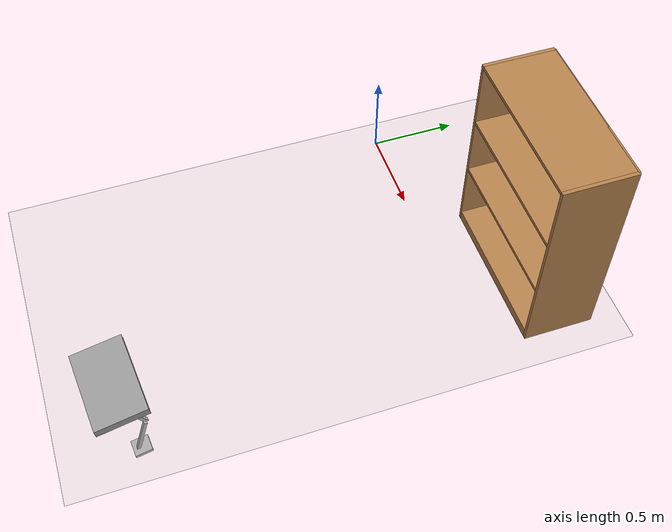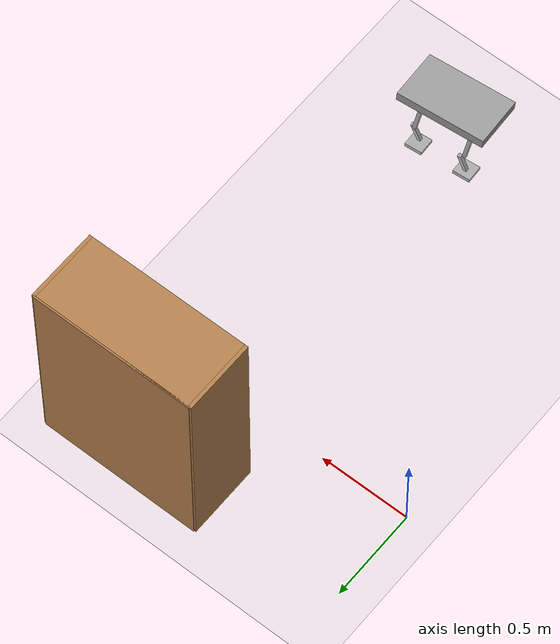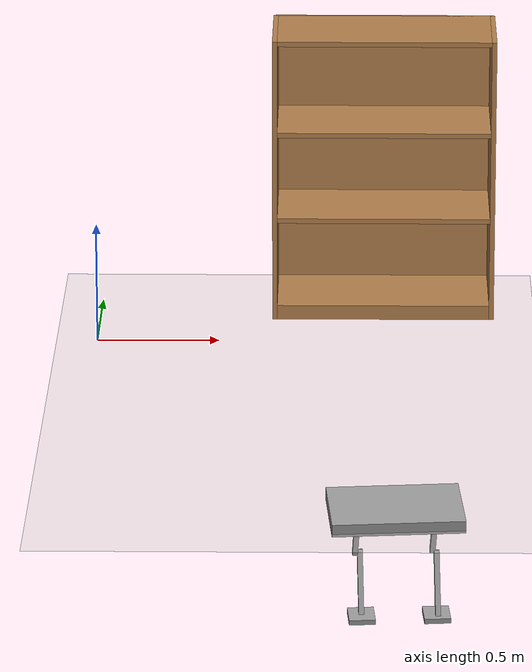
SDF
<sdf version="1.7">
 <world name="default">
  <model name="ground_plane">
   <static>1</static>
   <link name="link">
    <collision name="collision">
     <geometry><plane><normal>0 0 1</normal><size>100 100</size></plane></geometry>
     <surface>
      <contact><collide_bitmask>65535</collide_bitmask></contact>
      <friction><ode><mu>100</mu><mu2>50</mu2></ode></friction>
     </surface>
    </collision>
    <visual name="visual">
     <cast_shadows>0</cast_shadows>
     <geometry><plane><normal>0 0 1</normal><size>100 100</size></plane></geometry>
     <material>
      <script><uri>file://media/materials/scripts/gazebo.material</uri><name>Gazebo/Grey</name></script>
     </material>
    </visual>
   </link>
  </model>
  <model name="bookshelf_0">
   <static>1</static>
   <link name="link">
    <inertial><mass>1</mass></inertial>
    <collision name="back">
     <pose>0 0.005 0.6 0 -0 0</pose>
     <geometry><box><size>0.9 0.01 1.2</size></box></geometry>
    </collision>
    <visual name="visual1">
     <pose>0 0.005 0.6 0 -0 0</pose>
     <geometry><box><size>0.9 0.01 1.2</size></box></geometry>
     <material>
      <script><uri>file://media/materials/scripts/gazebo.material</uri><name>Gazebo/Wood</name></script>
     </material>
    </visual>
    <collision name="left_side">
     <pose>0.45 -0.195 0.6 0 -0 0</pose>
     <geometry><box><size>0.02 0.4 1.2</size></box></geometry>
    </collision>
    <visual name="visual2">
     <pose>0.45 -0.195 0.6 0 -0 0</pose>
     <geometry><box><size>0.02 0.4 1.2</size></box></geometry>
     <material>
      <script><uri>file://media/materials/scripts/gazebo.material</uri><name>Gazebo/Wood</name></script>
     </material>
    </visual>
    <collision name="right_side">
     <pose>-0.45 -0.195 0.6 0 -0 0</pose>
     <geometry><box><size>0.02 0.4 1.2</size></box></geometry>
    </collision>
    <visual name="visual3">
     <pose>-0.45 -0.195 0.6 0 -0 0</pose>
     <geometry><box><size>0.02 0.4 1.2</size></box></geometry>
     <material>
      <script><uri>file://media/materials/scripts/gazebo.material</uri><name>Gazebo/Wood</name></script>
     </material>
    </visual>
    <collision name="bottom">
     <pose>0 -0.195 0.03 0 -0 0</pose>
     <geometry><box><size>0.88 0.4 0.06</size></box></geometry>
    </collision>
    <visual name="visual4">
     <pose>0 -0.195 0.03 0 -0 0</pose>
     <geometry><box><size>0.88 0.4 0.06</size></box></geometry>
     <material>
      <script><uri>file://media/materials/scripts/gazebo.material</uri><name>Gazebo/Wood</name></script>
     </material>
    </visual>
    <collision name="top">
     <pose>0 -0.195 1.19 0 -0 0</pose>
     <geometry><box><size>0.88 0.4 0.02</size></box></geometry>
    </collision>
    <visual name="visual5">
     <pose>0 -0.195 1.19 0 -0 0</pose>
     <geometry><box><size>0.88 0.4 0.02</size></box></geometry>
     <material>
      <script><uri>file://media/materials/scripts/gazebo.material</uri><name>Gazebo/Wood</name></script>
     </material>
    </visual>
    <collision name="low_shelf">
     <pose>0 -0.195 0.43 0 -0 0</pose>
     <geometry><box><size>0.88 0.4 0.02</size></box></geometry>
    </collision>
    <visual name="visual6">
     <pose>0 -0.195 0.43 0 -0 0</pose>
     <geometry><box><size>0.88 0.4 0.02</size></box></geometry>
     <material>
      <script><uri>file://media/materials/scripts/gazebo.material</uri><name>Gazebo/Wood</name></script>
     </material>
    </visual>
    <collision name="high_shelf">
     <pose>0 -0.195 0.8 0 -0 0</pose>
     <geometry><box><size>0.88 0.4 0.02</size></box></geometry>
    </collision>
    <visual name="visual7">
     <pose>0 -0.195 0.8 0 -0 0</pose>
     <geometry><box><size>0.88 0.4 0.02</size></box></geometry>
     <material>
      <script><uri>file://media/materials/scripts/gazebo.material</uri><name>Gazebo/Wood</name></script>
     </material>
    </visual>
   </link>
   <pose>1.1746 0.663982 0 0 -0 0</pose>
  </model>
  <model name="humanoidRobot_0_clone_clone">
   <link name="link_0">
    <inertial>
     <mass>1</mass>
     <inertia>
      <ixx>0.166667</ixx>
      <ixy>0</ixy>
      <ixz>0</ixz>
      <iyy>0.166667</iyy>
      <iyz>0</iyz>
      <izz>0.166667</izz>
     </inertia>
    </inertial>
    <pose>-0.013681 -0.03226 0.204424 0 -0 0</pose>
    <visual name="visual">
     <geometry><box><size>0.5 0.3 0.05</size></box></geometry>
     <material>
      <lighting>1</lighting>
      <script><uri>file://media/materials/scripts/gazebo.material</uri><name>Gazebo/Grey</name></script>
      <shader type="pixel"><normal_map>__default__</normal_map></shader>
      <ambient>0.3 0.3 0.3 1</ambient>
      <diffuse>0.7 0.7 0.7 1</diffuse>
      <specular>0.01 0.01 0.01 1</specular>
      <emissive>0 0 0 1</emissive>
     </material>
    </visual>
    <collision name="collision">
     <geometry><box><size>0.5 0.3 0.02</size></box></geometry>
     <surface>
      <friction>
       <ode><mu>1</mu><mu2>1</mu2><fdir1>0 0 0</fdir1><slip1>0</slip1><slip2>0</slip2></ode>
       <torsional>
        <coefficient>1</coefficient>
        <patch_radius>0</patch_radius>
        <surface_radius>0</surface_radius>
        <use_patch_radius>1</use_patch_radius>
        <ode><slip>0</slip></ode>
       </torsional>
      </friction>
      <bounce><restitution_coefficient>0</restitution_coefficient><threshold>1e+06</threshold></bounce>
      <contact>
       <collide_without_contact>0</collide_without_contact>
       <collide_without_contact_bitmask>1</collide_without_contact_bitmask>
       <collide_bitmask>1</collide_bitmask>
       <ode>
        <soft_cfm>0</soft_cfm>
        <soft_erp>0.2</soft_erp>
        <kp>1e+13</kp>
        <kd>1</kd>
        <max_vel>0.01</max_vel>
        <min_depth>0</min_depth>
       </ode>
       <bullet>
        <split_impulse>1</split_impulse>
        <split_impulse_penetration_threshold>-0.01</split_impulse_penetration_threshold>
        <soft_cfm>0</soft_cfm>
        <soft_erp>0.2</soft_erp>
        <kp>1e+13</kp>
        <kd>1</kd>
       </bullet>
      </contact>
     </surface>
    </collision>
   </link>
   <link name="link_1">
    <inertial>
     <mass>1</mass>
     <inertia>
      <ixx>0.166667</ixx>
      <ixy>0</ixy>
      <ixz>0</ixz>
      <iyy>0.166667</iyy>
      <iyz>0</iyz>
      <izz>0.166667</izz>
     </inertia>
    </inertial>
    <pose>0.138675 -0.024286 0.185616 0.399501 -0 0</pose>
    <visual name="visual">
     <pose>0 0 -0.11 0 -0 0</pose>
     <geometry><box><size>0.02 0.02 0.25</size></box></geometry>
     <material>
      <lighting>1</lighting>
      <script><uri>file://media/materials/scripts/gazebo.material</uri><name>Gazebo/Grey</name></script>
      <shader type="pixel"><normal_map>__default__</normal_map></shader>
      <ambient>0.3 0.3 0.3 1</ambient>
      <diffuse>0.7 0.7 0.7 1</diffuse>
      <specular>0.01 0.01 0.01 1</specular>
      <emissive>0 0 0 1</emissive>
     </material>
    </visual>
    <collision name="collision">
     <pose>0 0 -0.11 0 -0 0</pose>
     <geometry><box><size>0.02 0.02 0.25</size></box></geometry>
     <surface>
      <friction>
       <ode><mu>1</mu><mu2>1</mu2><fdir1>0 0 0</fdir1><slip1>0</slip1><slip2>0</slip2></ode>
       <torsional>
        <coefficient>1</coefficient>
        <patch_radius>0</patch_radius>
        <surface_radius>0</surface_radius>
        <use_patch_radius>1</use_patch_radius>
        <ode><slip>0</slip></ode>
       </torsional>
      </friction>
      <bounce><restitution_coefficient>0</restitution_coefficient><threshold>1e+06</threshold></bounce>
      <contact>
       <collide_without_contact>0</collide_without_contact>
       <collide_without_contact_bitmask>1</collide_without_contact_bitmask>
       <collide_bitmask>1</collide_bitmask>
       <ode>
        <soft_cfm>0</soft_cfm>
        <soft_erp>0.2</soft_erp>
        <kp>1e+13</kp>
        <kd>1</kd>
        <max_vel>0.01</max_vel>
        <min_depth>0</min_depth>
       </ode>
       <bullet>
        <split_impulse>1</split_impulse>
        <split_impulse_penetration_threshold>-0.01</split_impulse_penetration_threshold>
        <soft_cfm>0</soft_cfm>
        <soft_erp>0.2</soft_erp>
        <kp>1e+13</kp>
        <kd>1</kd>
       </bullet>
      </contact>
     </surface>
    </collision>
   </link>
   <link name="link_1_clone">
    <inertial>
     <mass>1</mass>
     <inertia>
      <ixx>0.166667</ixx>
      <ixy>0</ixy>
      <ixz>0</ixz>
      <iyy>0.166667</iyy>
      <iyz>0</iyz>
      <izz>0.166667</izz>
     </inertia>
    </inertial>
    <pose>0.153036 0.05166 -0.034143 -0.417344 0 0</pose>
    <visual name="visual">
     <pose>0 0 -0.11 0 -0 0</pose>
     <geometry><box><size>0.02 0.02 0.25</size></box></geometry>
     <material>
      <lighting>1</lighting>
      <script><uri>file://media/materials/scripts/gazebo.material</uri><name>Gazebo/Grey</name></script>
      <shader type="pixel"><normal_map>__default__</normal_map></shader>
      <ambient>0.3 0.3 0.3 1</ambient>
      <diffuse>0.7 0.7 0.7 1</diffuse>
      <specular>0.01 0.01 0.01 1</specular>
      <emissive>0 0 0 1</emissive>
     </material>
    </visual>
    <collision name="collision">
     <pose>0 0 -0.11 0 -0 0</pose>
     <geometry><box><size>0.02 0.02 0.25</size></box></geometry>
     <surface>
      <friction>
       <ode><mu>1</mu><mu2>1</mu2><fdir1>0 0 0</fdir1><slip1>0</slip1><slip2>0</slip2></ode>
       <torsional>
        <coefficient>1</coefficient>
        <patch_radius>0</patch_radius>
        <surface_radius>0</surface_radius>
        <use_patch_radius>1</use_patch_radius>
        <ode><slip>0</slip></ode>
       </torsional>
      </friction>
      <bounce><restitution_coefficient>0</restitution_coefficient><threshold>1e+06</threshold></bounce>
      <contact>
       <collide_without_contact>0</collide_without_contact>
       <collide_without_contact_bitmask>1</collide_without_contact_bitmask>
       <collide_bitmask>1</collide_bitmask>
       <ode>
        <soft_cfm>0</soft_cfm>
        <soft_erp>0.2</soft_erp>
        <kp>1e+13</kp>
        <kd>1</kd>
        <max_vel>0.01</max_vel>
        <min_depth>0</min_depth>
       </ode>
       <bullet>
        <split_impulse>1</split_impulse>
        <split_impulse_penetration_threshold>-0.01</split_impulse_penetration_threshold>
        <soft_cfm>0</soft_cfm>
        <soft_erp>0.2</soft_erp>
        <kp>1e+13</kp>
        <kd>1</kd>
       </bullet>
      </contact>
     </surface>
    </collision>
   </link>
   <link name="link_1_clone_0">
    <inertial>
     <mass>1</mass>
     <inertia>
      <ixx>0.166667</ixx>
      <ixy>0</ixy>
      <ixz>0</ixz>
      <iyy>0.166667</iyy>
      <iyz>0</iyz>
      <izz>0.166667</izz>
     </inertia>
    </inertial>
    <pose>-0.154988 -0.02403 0.185616 0.399501 -0 0</pose>
    <visual name="visual">
     <pose>0 0 -0.11 0 -0 0</pose>
     <geometry><box><size>0.02 0.02 0.25</size></box></geometry>
     <material>
      <lighting>1</lighting>
      <script><uri>file://media/materials/scripts/gazebo.material</uri><name>Gazebo/Grey</name></script>
      <shader type="pixel"><normal_map>__default__</normal_map></shader>
      <ambient>0.3 0.3 0.3 1</ambient>
      <diffuse>0.7 0.7 0.7 1</diffuse>
      <specular>0.01 0.01 0.01 1</specular>
      <emissive>0 0 0 1</emissive>
     </material>
    </visual>
    <collision name="collision">
     <pose>0 0 -0.11 0 -0 0</pose>
     <geometry><box><size>0.02 0.02 0.25</size></box></geometry>
     <surface>
      <friction>
       <ode><mu>1</mu><mu2>1</mu2><fdir1>0 0 0</fdir1><slip1>0</slip1><slip2>0</slip2></ode>
       <torsional>
        <coefficient>1</coefficient>
        <patch_radius>0</patch_radius>
        <surface_radius>0</surface_radius>
        <use_patch_radius>1</use_patch_radius>
        <ode><slip>0</slip></ode>
       </torsional>
      </friction>
      <bounce><restitution_coefficient>0</restitution_coefficient><threshold>1e+06</threshold></bounce>
      <contact>
       <collide_without_contact>0</collide_without_contact>
       <collide_without_contact_bitmask>1</collide_without_contact_bitmask>
       <collide_bitmask>1</collide_bitmask>
       <ode>
        <soft_cfm>0</soft_cfm>
        <soft_erp>0.2</soft_erp>
        <kp>1e+13</kp>
        <kd>1</kd>
        <max_vel>0.01</max_vel>
        <min_depth>0</min_depth>
       </ode>
       <bullet>
        <split_impulse>1</split_impulse>
        <split_impulse_penetration_threshold>-0.01</split_impulse_penetration_threshold>
        <soft_cfm>0</soft_cfm>
        <soft_erp>0.2</soft_erp>
        <kp>1e+13</kp>
        <kd>1</kd>
       </bullet>
      </contact>
     </surface>
    </collision>
   </link>
   <link name="link_1_clone_clone">
    <inertial>
     <mass>1</mass>
     <inertia>
      <ixx>0.166667</ixx>
      <ixy>0</ixy>
      <ixz>0</ixz>
      <iyy>0.166667</iyy>
      <iyz>0</iyz>
      <izz>0.166667</izz>
     </inertia>
    </inertial>
    <pose>-0.136141 0.07538 -0.034143 -0.417344 0 0</pose>
    <visual name="visual">
     <pose>0 0 -0.11 0 -0 0</pose>
     <geometry><box><size>0.02 0.02 0.25</size></box></geometry>
     <material>
      <lighting>1</lighting>
      <script><uri>file://media/materials/scripts/gazebo.material</uri><name>Gazebo/Grey</name></script>
      <shader type="pixel"><normal_map>__default__</normal_map></shader>
      <ambient>0.3 0.3 0.3 1</ambient>
      <diffuse>0.7 0.7 0.7 1</diffuse>
      <specular>0.01 0.01 0.01 1</specular>
      <emissive>0 0 0 1</emissive>
     </material>
    </visual>
    <collision name="collision">
     <pose>0 0 -0.11 0 -0 0</pose>
     <geometry><box><size>0.02 0.02 0.25</size></box></geometry>
     <surface>
      <friction>
       <ode><mu>1</mu><mu2>1</mu2><fdir1>0 0 0</fdir1><slip1>0</slip1><slip2>0</slip2></ode>
       <torsional>
        <coefficient>1</coefficient>
        <patch_radius>0</patch_radius>
        <surface_radius>0</surface_radius>
        <use_patch_radius>1</use_patch_radius>
        <ode><slip>0</slip></ode>
       </torsional>
      </friction>
      <bounce><restitution_coefficient>0</restitution_coefficient><threshold>1e+06</threshold></bounce>
      <contact>
       <collide_without_contact>0</collide_without_contact>
       <collide_without_contact_bitmask>1</collide_without_contact_bitmask>
       <collide_bitmask>1</collide_bitmask>
       <ode>
        <soft_cfm>0</soft_cfm>
        <soft_erp>0.2</soft_erp>
        <kp>1e+13</kp>
        <kd>1</kd>
        <max_vel>0.01</max_vel>
        <min_depth>0</min_depth>
       </ode>
       <bullet>
        <split_impulse>1</split_impulse>
        <split_impulse_penetration_threshold>-0.01</split_impulse_penetration_threshold>
        <soft_cfm>0</soft_cfm>
        <soft_erp>0.2</soft_erp>
        <kp>1e+13</kp>
        <kd>1</kd>
       </bullet>
      </contact>
     </surface>
    </collision>
   </link>
   <link name="link_2">
    <inertial>
     <mass>1</mass>
     <inertia>
      <ixx>0.166667</ixx>
      <ixy>0</ixy>
      <ixz>0</ixz>
      <iyy>0.166667</iyy>
      <iyz>0</iyz>
      <izz>0.166667</izz>
     </inertia>
    </inertial>
    <pose>0.149239 -0.024175 -0.255408 0 -0 0</pose>
    <visual name="visual">
     <geometry><box><size>0.1 0.1 0.02</size></box></geometry>
     <material>
      <lighting>1</lighting>
      <script><uri>file://media/materials/scripts/gazebo.material</uri><name>Gazebo/Grey</name></script>
      <shader type="pixel"><normal_map>__default__</normal_map></shader>
      <ambient>0.3 0.3 0.3 1</ambient>
      <diffuse>0.7 0.7 0.7 1</diffuse>
      <specular>0.01 0.01 0.01 1</specular>
      <emissive>0 0 0 1</emissive>
     </material>
    </visual>
    <collision name="collision">
     <geometry><box><size>0.1 0.1 0.02</size></box></geometry>
     <surface>
      <friction>
       <ode><mu>1</mu><mu2>1</mu2><fdir1>0 0 0</fdir1><slip1>0</slip1><slip2>0</slip2></ode>
       <torsional>
        <coefficient>1</coefficient>
        <patch_radius>0</patch_radius>
        <surface_radius>0</surface_radius>
        <use_patch_radius>1</use_patch_radius>
        <ode><slip>0</slip></ode>
       </torsional>
      </friction>
      <bounce><restitution_coefficient>0</restitution_coefficient><threshold>1e+06</threshold></bounce>
      <contact>
       <collide_without_contact>0</collide_without_contact>
       <collide_without_contact_bitmask>1</collide_without_contact_bitmask>
       <collide_bitmask>1</collide_bitmask>
       <ode>
        <soft_cfm>0</soft_cfm>
        <soft_erp>0.2</soft_erp>
        <kp>1e+13</kp>
        <kd>1</kd>
        <max_vel>0.01</max_vel>
        <min_depth>0</min_depth>
       </ode>
       <bullet>
        <split_impulse>1</split_impulse>
        <split_impulse_penetration_threshold>-0.01</split_impulse_penetration_threshold>
        <soft_cfm>0</soft_cfm>
        <soft_erp>0.2</soft_erp>
        <kp>1e+13</kp>
        <kd>1</kd>
       </bullet>
      </contact>
     </surface>
    </collision>
   </link>
   <link name="link_2_clone">
    <inertial>
     <mass>1</mass>
     <inertia>
      <ixx>0.166667</ixx>
      <ixy>0</ixy>
      <ixz>0</ixz>
      <iyy>0.166667</iyy>
      <iyz>0</iyz>
      <izz>0.166667</izz>
     </inertia>
    </inertial>
    <pose>-0.136141 -0.022286 -0.251962 0 -0 0</pose>
    <visual name="visual">
     <geometry><box><size>0.1 0.1 0.02</size></box></geometry>
     <material>
      <lighting>1</lighting>
      <script><uri>file://media/materials/scripts/gazebo.material</uri><name>Gazebo/Grey</name></script>
      <shader type="pixel"><normal_map>__default__</normal_map></shader>
      <ambient>0.3 0.3 0.3 1</ambient>
      <diffuse>0.7 0.7 0.7 1</diffuse>
      <specular>0.01 0.01 0.01 1</specular>
      <emissive>0 0 0 1</emissive>
     </material>
    </visual>
    <collision name="collision">
     <geometry><box><size>0.1 0.1 0.02</size></box></geometry>
     <surface>
      <friction>
       <ode><mu>1</mu><mu2>1</mu2><fdir1>0 0 0</fdir1><slip1>0</slip1><slip2>0</slip2></ode>
       <torsional>
        <coefficient>1</coefficient>
        <patch_radius>0</patch_radius>
        <surface_radius>0</surface_radius>
        <use_patch_radius>1</use_patch_radius>
        <ode><slip>0</slip></ode>
       </torsional>
      </friction>
      <bounce><restitution_coefficient>0</restitution_coefficient><threshold>1e+06</threshold></bounce>
      <contact>
       <collide_without_contact>0</collide_without_contact>
       <collide_without_contact_bitmask>1</collide_without_contact_bitmask>
       <collide_bitmask>1</collide_bitmask>
       <ode>
        <soft_cfm>0</soft_cfm>
        <soft_erp>0.2</soft_erp>
        <kp>1e+13</kp>
        <kd>1</kd>
        <max_vel>0.01</max_vel>
        <min_depth>0</min_depth>
       </ode>
       <bullet>
        <split_impulse>1</split_impulse>
        <split_impulse_penetration_threshold>-0.01</split_impulse_penetration_threshold>
        <soft_cfm>0</soft_cfm>
        <soft_erp>0.2</soft_erp>
        <kp>1e+13</kp>
        <kd>1</kd>
       </bullet>
      </contact>
     </surface>
    </collision>
   </link>
   <joint name="link_0_JOINT_0" type="revolute">
    <parent>link_0</parent>
    <child>link_1</child>
    <axis>
     <xyz>1 0 0</xyz>
     <limit>
      <lower>-1.79769e+308</lower>
      <upper>1.79769e+308</upper>
      <effort>-1</effort>
      <velocity>-1</velocity>
     </limit>
     <dynamics>
      <spring_reference>0</spring_reference>
      <spring_stiffness>0</spring_stiffness>
      <damping>0</damping>
     </dynamics>
    </axis>
    <physics>
     <ode><limit><cfm>0</cfm><erp>0.2</erp></limit><suspension><cfm>0</cfm><erp>0.2</erp></suspension></ode>
    </physics>
   </joint>
   <joint name="link_0_JOINT_3" type="revolute">
    <parent>link_0</parent>
    <child>link_1_clone_0</child>
    <axis>
     <xyz>1 0 0</xyz>
     <limit>
      <lower>-1.79769e+308</lower>
      <upper>1.79769e+308</upper>
      <effort>-1</effort>
      <velocity>-1</velocity>
     </limit>
     <dynamics>
      <spring_reference>0</spring_reference>
      <spring_stiffness>0</spring_stiffness>
      <damping>0</damping>
     </dynamics>
    </axis>
    <physics>
     <ode><limit><cfm>0</cfm><erp>0.2</erp></limit><suspension><cfm>0</cfm><erp>0.2</erp></suspension></ode>
    </physics>
   </joint>
   <joint name="link_1_JOINT_1" type="revolute">
    <parent>link_1</parent>
    <child>link_1_clone</child>
    <axis>
     <xyz>1 0 0</xyz>
     <limit>
      <lower>-1.79769e+308</lower>
      <upper>1.79769e+308</upper>
      <effort>-1</effort>
      <velocity>-1</velocity>
     </limit>
     <dynamics>
      <spring_reference>0</spring_reference>
      <spring_stiffness>0</spring_stiffness>
      <damping>0</damping>
     </dynamics>
    </axis>
    <physics>
     <ode><limit><cfm>0</cfm><erp>0.2</erp></limit><suspension><cfm>0</cfm><erp>0.2</erp></suspension></ode>
    </physics>
   </joint>
   <joint name="link_1_clone_0_JOINT_4" type="revolute">
    <parent>link_1_clone_0</parent>
    <child>link_1_clone_clone</child>
    <axis>
     <xyz>1 0 0</xyz>
     <limit>
      <lower>-1.79769e+308</lower>
      <upper>1.79769e+308</upper>
      <effort>-1</effort>
      <velocity>-1</velocity>
     </limit>
     <dynamics>
      <spring_reference>0</spring_reference>
      <spring_stiffness>0</spring_stiffness>
      <damping>0</damping>
     </dynamics>
    </axis>
    <physics>
     <ode><limit><cfm>0</cfm><erp>0.2</erp></limit><suspension><cfm>0</cfm><erp>0.2</erp></suspension></ode>
    </physics>
   </joint>
   <joint name="link_1_clone_JOINT_2" type="revolute">
    <parent>link_1_clone</parent>
    <child>link_2</child>
    <axis>
     <xyz>1 0 0</xyz>
     <limit>
      <lower>-1.79769e+308</lower>
      <upper>1.79769e+308</upper>
      <effort>-1</effort>
      <velocity>-1</velocity>
     </limit>
     <dynamics>
      <spring_reference>0</spring_reference>
      <spring_stiffness>0</spring_stiffness>
      <damping>0</damping>
     </dynamics>
    </axis>
    <physics>
     <ode><limit><cfm>0</cfm><erp>0.2</erp></limit><suspension><cfm>0</cfm><erp>0.2</erp></suspension></ode>
    </physics>
   </joint>
   <joint name="link_1_clone_clone_JOINT_5" type="revolute">
    <parent>link_1_clone_clone</parent>
    <child>link_2_clone</child>
    <axis>
     <xyz>1 0 0</xyz>
     <limit>
      <lower>-1.79769e+308</lower>
      <upper>1.79769e+308</upper>
      <effort>-1</effort>
      <velocity>-1</velocity>
     </limit>
     <dynamics>
      <spring_reference>0</spring_reference>
      <spring_stiffness>0</spring_stiffness>
      <damping>0</damping>
     </dynamics>
    </axis>
    <physics>
     <ode><limit><cfm>0</cfm><erp>0.2</erp></limit><suspension><cfm>0</cfm><erp>0.2</erp></suspension></ode>
    </physics>
   </joint>
   <static>0</static>
   <pose>1.22282 -1.88238 -0.170992 0.116549 -0.003444 0.085767</pose>
  </model>
 </world>
</sdf>
